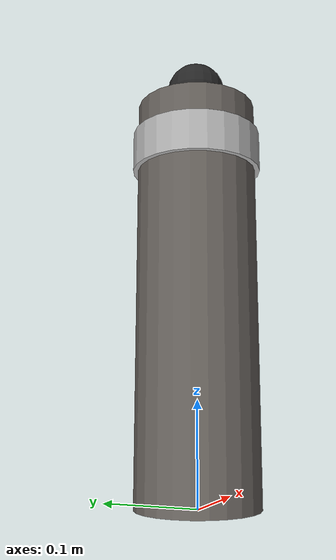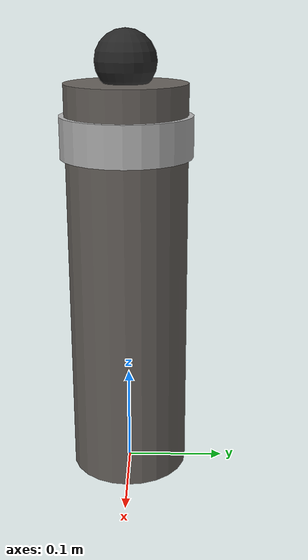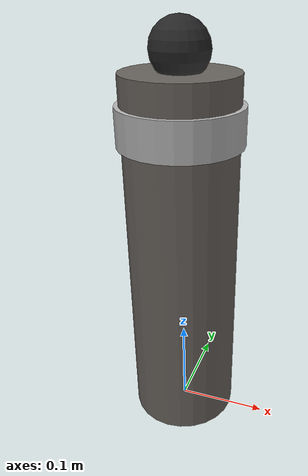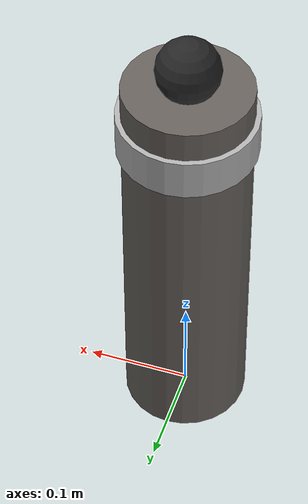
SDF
<?xml version="1.0"?>
<sdf version="1.9">
  <model name="pathway_marker">
    <static>true</static>

    <link name="body">
      <!-- Bollard body -->
      <visual name="bollard_visual">
        <pose>0 0 0.2 0 0 0</pose>
        <geometry>
          <cylinder>
            <radius>0.06</radius>
            <length>0.4</length>
          </cylinder>
        </geometry>
        <material>
          <ambient>0.35 0.33 0.31 1</ambient>
          <diffuse>0.4 0.38 0.36 1</diffuse>
          <specular>0.15 0.15 0.15 1</specular>
        </material>
      </visual>

      <!-- Reflective band -->
      <visual name="band_visual">
        <pose>0 0 0.35 0 0 0</pose>
        <geometry>
          <cylinder>
            <radius>0.065</radius>
            <length>0.04</length>
          </cylinder>
        </geometry>
        <material>
          <ambient>0.6 0.6 0.6 1</ambient>
          <diffuse>0.7 0.7 0.7 1</diffuse>
          <specular>0.5 0.5 0.5 1</specular>
        </material>
      </visual>

      <collision name="collision">
        <pose>0 0 0.2 0 0 0</pose>
        <geometry>
          <cylinder>
            <radius>0.07</radius>
            <length>0.4</length>
          </cylinder>
        </geometry>
      </collision>

      <!-- Guide LED (top) -->
      <visual name="guide_led_visual">
        <pose>0 0 0.42 0 0 0</pose>
        <geometry>
          <sphere><radius>0.03</radius></sphere>
        </geometry>
        <material>
          <ambient>0.15 0.15 0.15 1</ambient>
          <diffuse>0.15 0.15 0.15 1</diffuse>
          <emissive>0.2 0.2 0.2 1</emissive>
        </material>
      </visual>
      <light name="guide_led_light" type="point">
        <pose>0 0 0.45 0 0 0</pose>
        <diffuse>1 1 1 1</diffuse>
        <specular>0 0 0 1</specular>
        <attenuation>
          <range>3</range>
          <constant>1.0</constant>
          <linear>0.4</linear>
          <quadratic>0.2</quadratic>
        </attenuation>
      </light>
    </link>

    <plugin name="guide_led" filename="libLedPlugin.so">
      <led_group_name>marker_light</led_group_name>

      <led name="guide">
        <visual_name>body/guide_led_visual</visual_name>
        <light_name>body/guide_led_light</light_name>
        <default_state>
          <color>0.15 0.15 0.15 1</color>
          <intensity>0.0</intensity>
        </default_state>
      </led>

      <startup_mode>guide</startup_mode>

      <mode name="guide">
        <step always_on="true">
          <color>0.6 0.6 0.55 1</color>
          <intensity>0.5</intensity>
        </step>
      </mode>

      <mode name="active">
        <step always_on="true">
          <color>1 1 0.95 1</color>
          <intensity>1.5</intensity>
        </step>
      </mode>

      <mode name="emergency">
        <step always_on="false">
          <color>1 0 0 1</color>
          <intensity>2.0</intensity>
          <on_time>0.3</on_time>
        </step>
        <step always_on="false">
          <color>0.2 0 0 1</color>
          <intensity>0.0</intensity>
          <on_time>0.3</on_time>
        </step>
      </mode>
    </plugin>
  </model>
</sdf>
